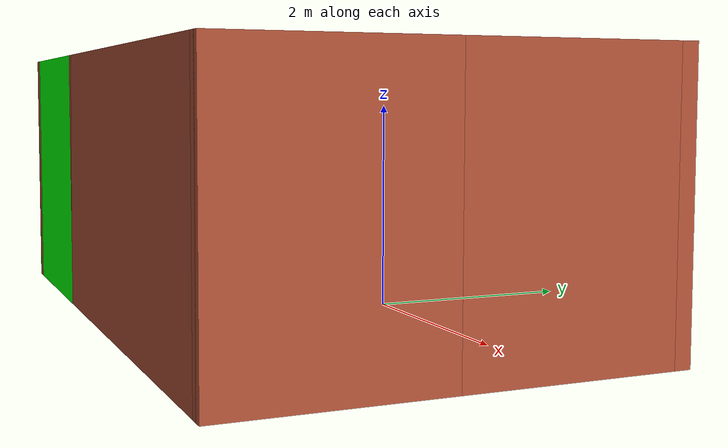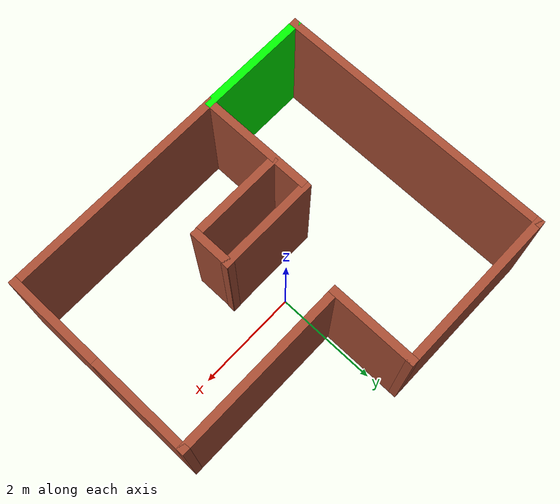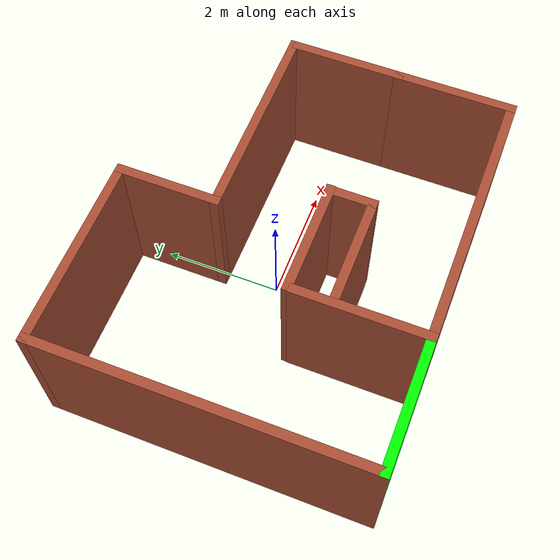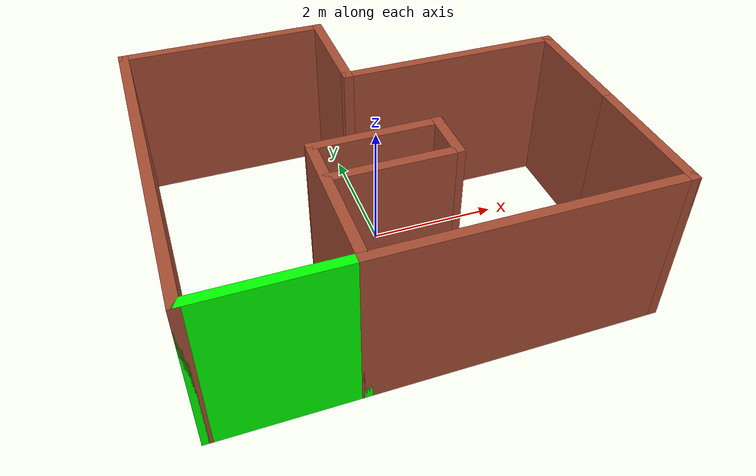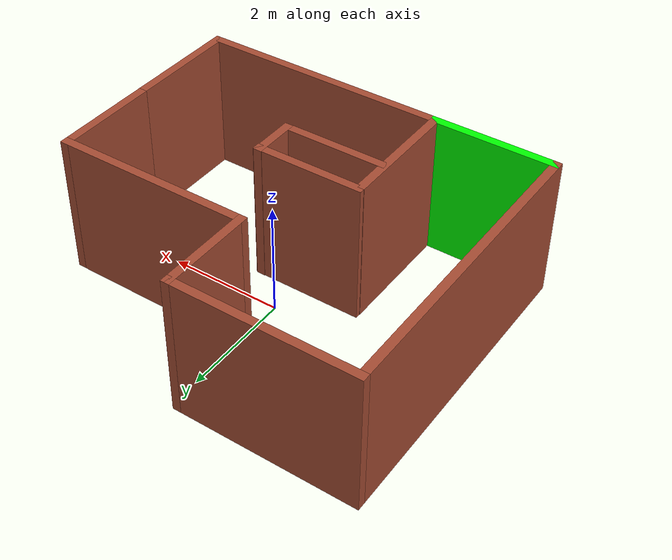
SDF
<?xml version='1.0'?>
<sdf version='1.7'>
  <model name='Enclosed'>
    <link name='Wall_0'>
      <pose>3.225 0.0025 0 0 -0 1.5708</pose>
      <self_collide>0</self_collide>
      <enable_wind>0</enable_wind>
      <kinematic>0</kinematic>
      <visual name='Wall_0_Visual'>
        <pose>0 0 1.25 0 -0 0</pose>
        <geometry>
          <box>
            <size>2 0.15 2.5</size>
          </box>
        </geometry>
        <material>
          <script>
            <uri>file://media/materials/scripts/gazebo.material</uri>
            <name>Gazebo/Bricks</name>
          </script>
          <ambient>1 1 1 1</ambient>
          <shader type='pixel'/>
        </material>
        <meta>
          <layer>0</layer>
        </meta>
        <transparency>0</transparency>
        <cast_shadows>1</cast_shadows>
      </visual>
      <collision name='Wall_0_Collision'>
        <laser_retro>0</laser_retro>
        <max_contacts>10</max_contacts>
        <pose>0 0 1.25 0 -0 0</pose>
        <geometry>
          <box>
            <size>2 0.15 2.5</size>
          </box>
        </geometry>
        <surface>
          <friction>
            <ode>
              <mu>1</mu>
              <mu2>1</mu2>
              <fdir1>0 0 0</fdir1>
              <slip1>0</slip1>
              <slip2>0</slip2>
            </ode>
            <torsional>
              <coefficient>1</coefficient>
              <patch_radius>0</patch_radius>
              <surface_radius>0</surface_radius>
              <use_patch_radius>1</use_patch_radius>
              <ode>
                <slip>0</slip>
              </ode>
            </torsional>
          </friction>
          <bounce>
            <restitution_coefficient>0</restitution_coefficient>
            <threshold>1e+06</threshold>
          </bounce>
          <contact>
            <collide_without_contact>0</collide_without_contact>
            <collide_without_contact_bitmask>1</collide_without_contact_bitmask>
            <collide_bitmask>1</collide_bitmask>
            <ode>
              <soft_cfm>0</soft_cfm>
              <soft_erp>0.2</soft_erp>
              <kp>1e+13</kp>
              <kd>1</kd>
              <max_vel>0.01</max_vel>
              <min_depth>0</min_depth>
            </ode>
            <bullet>
              <split_impulse>1</split_impulse>
              <split_impulse_penetration_threshold>-0.01</split_impulse_penetration_threshold>
              <soft_cfm>0</soft_cfm>
              <soft_erp>0.2</soft_erp>
              <kp>1e+13</kp>
              <kd>1</kd>
            </bullet>
          </contact>
        </surface>
      </collision>
    </link>
    <link name='Wall_1'>
      <pose>1.55 0.9275 0 0 -0 3.14159</pose>
      <self_collide>0</self_collide>
      <enable_wind>0</enable_wind>
      <kinematic>0</kinematic>
      <visual name='Wall_1_Visual'>
        <pose>0 0 1.25 0 -0 0</pose>
        <geometry>
          <box>
            <size>3.5 0.15 2.5</size>
          </box>
        </geometry>
        <material>
          <script>
            <uri>file://media/materials/scripts/gazebo.material</uri>
            <name>Gazebo/Bricks</name>
          </script>
          <ambient>1 1 1 1</ambient>
          <shader type='pixel'/>
        </material>
        <meta>
          <layer>0</layer>
        </meta>
        <transparency>0</transparency>
        <cast_shadows>1</cast_shadows>
      </visual>
      <collision name='Wall_1_Collision'>
        <laser_retro>0</laser_retro>
        <max_contacts>10</max_contacts>
        <pose>0 0 1.25 0 -0 0</pose>
        <geometry>
          <box>
            <size>3.5 0.15 2.5</size>
          </box>
        </geometry>
        <surface>
          <friction>
            <ode>
              <mu>1</mu>
              <mu2>1</mu2>
              <fdir1>0 0 0</fdir1>
              <slip1>0</slip1>
              <slip2>0</slip2>
            </ode>
            <torsional>
              <coefficient>1</coefficient>
              <patch_radius>0</patch_radius>
              <surface_radius>0</surface_radius>
              <use_patch_radius>1</use_patch_radius>
              <ode>
                <slip>0</slip>
              </ode>
            </torsional>
          </friction>
          <bounce>
            <restitution_coefficient>0</restitution_coefficient>
            <threshold>1e+06</threshold>
          </bounce>
          <contact>
            <collide_without_contact>0</collide_without_contact>
            <collide_without_contact_bitmask>1</collide_without_contact_bitmask>
            <collide_bitmask>1</collide_bitmask>
            <ode>
              <soft_cfm>0</soft_cfm>
              <soft_erp>0.2</soft_erp>
              <kp>1e+13</kp>
              <kd>1</kd>
              <max_vel>0.01</max_vel>
              <min_depth>0</min_depth>
            </ode>
            <bullet>
              <split_impulse>1</split_impulse>
              <split_impulse_penetration_threshold>-0.01</split_impulse_penetration_threshold>
              <soft_cfm>0</soft_cfm>
              <soft_erp>0.2</soft_erp>
              <kp>1e+13</kp>
              <kd>1</kd>
            </bullet>
          </contact>
        </surface>
      </collision>
    </link>
    <link name='Wall_10'>
      <pose>3.225 -1.8725 0 0 -0 1.5708</pose>
      <self_collide>0</self_collide>
      <enable_wind>0</enable_wind>
      <kinematic>0</kinematic>
      <visual name='Wall_10_Visual'>
        <pose>0 0 1.25 0 -0 0</pose>
        <geometry>
          <box>
            <size>2.05 0.15 2.5</size>
          </box>
        </geometry>
        <material>
          <script>
            <uri>file://media/materials/scripts/gazebo.material</uri>
            <name>Gazebo/Bricks</name>
          </script>
          <ambient>1 1 1 1</ambient>
          <shader type='pixel'/>
        </material>
        <meta>
          <layer>0</layer>
        </meta>
        <transparency>0</transparency>
        <cast_shadows>1</cast_shadows>
      </visual>
      <collision name='Wall_10_Collision'>
        <laser_retro>0</laser_retro>
        <max_contacts>10</max_contacts>
        <pose>0 0 1.25 0 -0 0</pose>
        <geometry>
          <box>
            <size>2.05 0.15 2.5</size>
          </box>
        </geometry>
        <surface>
          <friction>
            <ode>
              <mu>1</mu>
              <mu2>1</mu2>
              <fdir1>0 0 0</fdir1>
              <slip1>0</slip1>
              <slip2>0</slip2>
            </ode>
            <torsional>
              <coefficient>1</coefficient>
              <patch_radius>0</patch_radius>
              <surface_radius>0</surface_radius>
              <use_patch_radius>1</use_patch_radius>
              <ode>
                <slip>0</slip>
              </ode>
            </torsional>
          </friction>
          <bounce>
            <restitution_coefficient>0</restitution_coefficient>
            <threshold>1e+06</threshold>
          </bounce>
          <contact>
            <collide_without_contact>0</collide_without_contact>
            <collide_without_contact_bitmask>1</collide_without_contact_bitmask>
            <collide_bitmask>1</collide_bitmask>
            <ode>
              <soft_cfm>0</soft_cfm>
              <soft_erp>0.2</soft_erp>
              <kp>1e+13</kp>
              <kd>1</kd>
              <max_vel>0.01</max_vel>
              <min_depth>0</min_depth>
            </ode>
            <bullet>
              <split_impulse>1</split_impulse>
              <split_impulse_penetration_threshold>-0.01</split_impulse_penetration_threshold>
              <soft_cfm>0</soft_cfm>
              <soft_erp>0.2</soft_erp>
              <kp>1e+13</kp>
              <kd>1</kd>
            </bullet>
          </contact>
        </surface>
      </collision>
    </link>
    <link name='Wall_2'>
      <pose>-0.125 1.7275 0 0 -0 1.5708</pose>
      <self_collide>0</self_collide>
      <enable_wind>0</enable_wind>
      <kinematic>0</kinematic>
      <visual name='Wall_2_Visual'>
        <pose>0 0 1.25 0 -0 0</pose>
        <geometry>
          <box>
            <size>1.75 0.15 2.5</size>
          </box>
        </geometry>
        <material>
          <script>
            <uri>file://media/materials/scripts/gazebo.material</uri>
            <name>Gazebo/Bricks</name>
          </script>
          <ambient>1 1 1 1</ambient>
          <shader type='pixel'/>
        </material>
        <meta>
          <layer>0</layer>
        </meta>
        <transparency>0</transparency>
        <cast_shadows>1</cast_shadows>
      </visual>
      <collision name='Wall_2_Collision'>
        <laser_retro>0</laser_retro>
        <max_contacts>10</max_contacts>
        <pose>0 0 1.25 0 -0 0</pose>
        <geometry>
          <box>
            <size>1.75 0.15 2.5</size>
          </box>
        </geometry>
        <surface>
          <friction>
            <ode>
              <mu>1</mu>
              <mu2>1</mu2>
              <fdir1>0 0 0</fdir1>
              <slip1>0</slip1>
              <slip2>0</slip2>
            </ode>
            <torsional>
              <coefficient>1</coefficient>
              <patch_radius>0</patch_radius>
              <surface_radius>0</surface_radius>
              <use_patch_radius>1</use_patch_radius>
              <ode>
                <slip>0</slip>
              </ode>
            </torsional>
          </friction>
          <bounce>
            <restitution_coefficient>0</restitution_coefficient>
            <threshold>1e+06</threshold>
          </bounce>
          <contact>
            <collide_without_contact>0</collide_without_contact>
            <collide_without_contact_bitmask>1</collide_without_contact_bitmask>
            <collide_bitmask>1</collide_bitmask>
            <ode>
              <soft_cfm>0</soft_cfm>
              <soft_erp>0.2</soft_erp>
              <kp>1e+13</kp>
              <kd>1</kd>
              <max_vel>0.01</max_vel>
              <min_depth>0</min_depth>
            </ode>
            <bullet>
              <split_impulse>1</split_impulse>
              <split_impulse_penetration_threshold>-0.01</split_impulse_penetration_threshold>
              <soft_cfm>0</soft_cfm>
              <soft_erp>0.2</soft_erp>
              <kp>1e+13</kp>
              <kd>1</kd>
            </bullet>
          </contact>
        </surface>
      </collision>
    </link>
    <link name='Wall_3'>
      <pose>-1.675 2.5275 0 0 -0 3.14159</pose>
      <self_collide>0</self_collide>
      <enable_wind>0</enable_wind>
      <kinematic>0</kinematic>
      <visual name='Wall_3_Visual'>
        <pose>0 0 1.25 0 -0 0</pose>
        <geometry>
          <box>
            <size>3.25 0.15 2.5</size>
          </box>
        </geometry>
        <material>
          <script>
            <uri>file://media/materials/scripts/gazebo.material</uri>
            <name>Gazebo/Bricks</name>
          </script>
          <ambient>1 1 1 1</ambient>
          <shader type='pixel'/>
        </material>
        <meta>
          <layer>0</layer>
        </meta>
        <transparency>0</transparency>
        <cast_shadows>1</cast_shadows>
      </visual>
      <collision name='Wall_3_Collision'>
        <laser_retro>0</laser_retro>
        <max_contacts>10</max_contacts>
        <pose>0 0 1.25 0 -0 0</pose>
        <geometry>
          <box>
            <size>3.25 0.15 2.5</size>
          </box>
        </geometry>
        <surface>
          <friction>
            <ode>
              <mu>1</mu>
              <mu2>1</mu2>
              <fdir1>0 0 0</fdir1>
              <slip1>0</slip1>
              <slip2>0</slip2>
            </ode>
            <torsional>
              <coefficient>1</coefficient>
              <patch_radius>0</patch_radius>
              <surface_radius>0</surface_radius>
              <use_patch_radius>1</use_patch_radius>
              <ode>
                <slip>0</slip>
              </ode>
            </torsional>
          </friction>
          <bounce>
            <restitution_coefficient>0</restitution_coefficient>
            <threshold>1e+06</threshold>
          </bounce>
          <contact>
            <collide_without_contact>0</collide_without_contact>
            <collide_without_contact_bitmask>1</collide_without_contact_bitmask>
            <collide_bitmask>1</collide_bitmask>
            <ode>
              <soft_cfm>0</soft_cfm>
              <soft_erp>0.2</soft_erp>
              <kp>1e+13</kp>
              <kd>1</kd>
              <max_vel>0.01</max_vel>
              <min_depth>0</min_depth>
            </ode>
            <bullet>
              <split_impulse>1</split_impulse>
              <split_impulse_penetration_threshold>-0.01</split_impulse_penetration_threshold>
              <soft_cfm>0</soft_cfm>
              <soft_erp>0.2</soft_erp>
              <kp>1e+13</kp>
              <kd>1</kd>
            </bullet>
          </contact>
        </surface>
      </collision>
    </link>
    <link name='Wall_4'>
      <pose>-3.225 -0.1475 0 0 0 -1.5708</pose>
      <self_collide>0</self_collide>
      <enable_wind>0</enable_wind>
      <kinematic>0</kinematic>
      <visual name='Wall_4_Visual'>
        <pose>0 0 1.25 0 -0 0</pose>
        <geometry>
          <box>
            <size>5.5 0.15 2.5</size>
          </box>
        </geometry>
        <material>
          <script>
            <uri>file://media/materials/scripts/gazebo.material</uri>
            <name>Gazebo/Bricks</name>
          </script>
          <ambient>1 1 1 1</ambient>
          <shader type='pixel'/>
        </material>
        <meta>
          <layer>0</layer>
        </meta>
        <transparency>0</transparency>
        <cast_shadows>1</cast_shadows>
      </visual>
      <collision name='Wall_4_Collision'>
        <laser_retro>0</laser_retro>
        <max_contacts>10</max_contacts>
        <pose>0 0 1.25 0 -0 0</pose>
        <geometry>
          <box>
            <size>5.5 0.15 2.5</size>
          </box>
        </geometry>
        <surface>
          <friction>
            <ode>
              <mu>1</mu>
              <mu2>1</mu2>
              <fdir1>0 0 0</fdir1>
              <slip1>0</slip1>
              <slip2>0</slip2>
            </ode>
            <torsional>
              <coefficient>1</coefficient>
              <patch_radius>0</patch_radius>
              <surface_radius>0</surface_radius>
              <use_patch_radius>1</use_patch_radius>
              <ode>
                <slip>0</slip>
              </ode>
            </torsional>
          </friction>
          <bounce>
            <restitution_coefficient>0</restitution_coefficient>
            <threshold>1e+06</threshold>
          </bounce>
          <contact>
            <collide_without_contact>0</collide_without_contact>
            <collide_without_contact_bitmask>1</collide_without_contact_bitmask>
            <collide_bitmask>1</collide_bitmask>
            <ode>
              <soft_cfm>0</soft_cfm>
              <soft_erp>0.2</soft_erp>
              <kp>1e+13</kp>
              <kd>1</kd>
              <max_vel>0.01</max_vel>
              <min_depth>0</min_depth>
            </ode>
            <bullet>
              <split_impulse>1</split_impulse>
              <split_impulse_penetration_threshold>-0.01</split_impulse_penetration_threshold>
              <soft_cfm>0</soft_cfm>
              <soft_erp>0.2</soft_erp>
              <kp>1e+13</kp>
              <kd>1</kd>
            </bullet>
          </contact>
        </surface>
      </collision>
    </link>
    <link name='Wall_5'>
      <pose>-2.175 -2.8225 0 0 -0 0</pose>
      <self_collide>0</self_collide>
      <enable_wind>0</enable_wind>
      <kinematic>0</kinematic>
      <visual name='Wall_5_Visual'>
        <pose>0 0 1.25 0 -0 0</pose>
        <geometry>
          <box>
            <size>2.25 0.15 2.5</size>
          </box>
        </geometry>
        <material>
          <ambient>0 1 0 1</ambient>
          <diffuse>0 1 0 1</diffuse>
          <shader type='pixel'/>
          <script>
            <name>ModelPreview_3::Wall_5::Wall_5_Visual_MATERIAL_</name>
            <uri>__default__</uri>
          </script>
        </material>
        <meta>
          <layer>0</layer>
        </meta>
        <transparency>0</transparency>
        <cast_shadows>1</cast_shadows>
      </visual>
      <collision name='Wall_5_Collision'>
        <laser_retro>0</laser_retro>
        <max_contacts>10</max_contacts>
        <pose>0 0 1.25 0 -0 0</pose>
        <geometry>
          <box>
            <size>2.25 0.15 2.5</size>
          </box>
        </geometry>
        <surface>
          <friction>
            <ode>
              <mu>1</mu>
              <mu2>1</mu2>
              <fdir1>0 0 0</fdir1>
              <slip1>0</slip1>
              <slip2>0</slip2>
            </ode>
            <torsional>
              <coefficient>1</coefficient>
              <patch_radius>0</patch_radius>
              <surface_radius>0</surface_radius>
              <use_patch_radius>1</use_patch_radius>
              <ode>
                <slip>0</slip>
              </ode>
            </torsional>
          </friction>
          <bounce>
            <restitution_coefficient>0</restitution_coefficient>
            <threshold>1e+06</threshold>
          </bounce>
          <contact>
            <collide_without_contact>0</collide_without_contact>
            <collide_without_contact_bitmask>1</collide_without_contact_bitmask>
            <collide_bitmask>1</collide_bitmask>
            <ode>
              <soft_cfm>0</soft_cfm>
              <soft_erp>0.2</soft_erp>
              <kp>1e+13</kp>
              <kd>1</kd>
              <max_vel>0.01</max_vel>
              <min_depth>0</min_depth>
            </ode>
            <bullet>
              <split_impulse>1</split_impulse>
              <split_impulse_penetration_threshold>-0.01</split_impulse_penetration_threshold>
              <soft_cfm>0</soft_cfm>
              <soft_erp>0.2</soft_erp>
              <kp>1e+13</kp>
              <kd>1</kd>
            </bullet>
          </contact>
        </surface>
      </collision>
    </link>
    <link name='Wall_6'>
      <pose>-1.125 -1.7725 0 0 -0 1.5708</pose>
      <self_collide>0</self_collide>
      <enable_wind>0</enable_wind>
      <kinematic>0</kinematic>
      <visual name='Wall_6_Visual'>
        <pose>0 0 1.25 0 -0 0</pose>
        <geometry>
          <box>
            <size>2.25 0.15 2.5</size>
          </box>
        </geometry>
        <material>
          <script>
            <uri>file://media/materials/scripts/gazebo.material</uri>
            <name>Gazebo/Bricks</name>
          </script>
          <ambient>1 1 1 1</ambient>
          <shader type='pixel'/>
        </material>
        <meta>
          <layer>0</layer>
        </meta>
        <transparency>0</transparency>
        <cast_shadows>1</cast_shadows>
      </visual>
      <collision name='Wall_6_Collision'>
        <laser_retro>0</laser_retro>
        <max_contacts>10</max_contacts>
        <pose>0 0 1.25 0 -0 0</pose>
        <geometry>
          <box>
            <size>2.25 0.15 2.5</size>
          </box>
        </geometry>
        <surface>
          <friction>
            <ode>
              <mu>1</mu>
              <mu2>1</mu2>
              <fdir1>0 0 0</fdir1>
              <slip1>0</slip1>
              <slip2>0</slip2>
            </ode>
            <torsional>
              <coefficient>1</coefficient>
              <patch_radius>0</patch_radius>
              <surface_radius>0</surface_radius>
              <use_patch_radius>1</use_patch_radius>
              <ode>
                <slip>0</slip>
              </ode>
            </torsional>
          </friction>
          <bounce>
            <restitution_coefficient>0</restitution_coefficient>
            <threshold>1e+06</threshold>
          </bounce>
          <contact>
            <collide_without_contact>0</collide_without_contact>
            <collide_without_contact_bitmask>1</collide_without_contact_bitmask>
            <collide_bitmask>1</collide_bitmask>
            <ode>
              <soft_cfm>0</soft_cfm>
              <soft_erp>0.2</soft_erp>
              <kp>1e+13</kp>
              <kd>1</kd>
              <max_vel>0.01</max_vel>
              <min_depth>0</min_depth>
            </ode>
            <bullet>
              <split_impulse>1</split_impulse>
              <split_impulse_penetration_threshold>-0.01</split_impulse_penetration_threshold>
              <soft_cfm>0</soft_cfm>
              <soft_erp>0.2</soft_erp>
              <kp>1e+13</kp>
              <kd>1</kd>
            </bullet>
          </contact>
        </surface>
      </collision>
    </link>
    <link name='Wall_6_clone'>
      <pose>0.684318 -0.976283 0 0 -0 1.5708</pose>
      <self_collide>0</self_collide>
      <enable_wind>0</enable_wind>
      <kinematic>0</kinematic>
      <inertial>
        <inertia>
          <ixx>0</ixx>
          <ixy>0</ixy>
          <ixz>0</ixz>
          <iyy>0</iyy>
          <iyz>0</iyz>
          <izz>0</izz>
        </inertia>
        <mass>0</mass>
        <pose>0 0 0 0 -0 0</pose>
      </inertial>
      <visual name='Wall_6_Visual'>
        <pose>0 0 1.25 0 -0 0</pose>
        <geometry>
          <box>
            <size>0.849277 0.15 2.5</size>
          </box>
        </geometry>
        <material>
          <script>
            <uri>file://media/materials/scripts/gazebo.material</uri>
            <name>Gazebo/Bricks</name>
          </script>
          <ambient>1 1 1 1</ambient>
          <shader type='pixel'/>
        </material>
        <meta>
          <layer>0</layer>
        </meta>
        <transparency>0</transparency>
        <cast_shadows>1</cast_shadows>
      </visual>
      <collision name='Wall_6_Collision'>
        <laser_retro>0</laser_retro>
        <max_contacts>10</max_contacts>
        <pose>0 0 1.25 0 -0 0</pose>
        <geometry>
          <box>
            <size>0.849277 0.15 2.5</size>
          </box>
        </geometry>
        <surface>
          <friction>
            <ode>
              <mu>1</mu>
              <mu2>1</mu2>
              <fdir1>0 0 0</fdir1>
              <slip1>0</slip1>
              <slip2>0</slip2>
            </ode>
            <torsional>
              <coefficient>1</coefficient>
              <patch_radius>0</patch_radius>
              <surface_radius>0</surface_radius>
              <use_patch_radius>1</use_patch_radius>
              <ode>
                <slip>0</slip>
              </ode>
            </torsional>
          </friction>
          <bounce>
            <restitution_coefficient>0</restitution_coefficient>
            <threshold>1e+06</threshold>
          </bounce>
          <contact>
            <collide_without_contact>0</collide_without_contact>
            <collide_without_contact_bitmask>1</collide_without_contact_bitmask>
            <collide_bitmask>1</collide_bitmask>
            <ode>
              <soft_cfm>0</soft_cfm>
              <soft_erp>0.2</soft_erp>
              <kp>1e+13</kp>
              <kd>1</kd>
              <max_vel>0.01</max_vel>
              <min_depth>0</min_depth>
            </ode>
            <bullet>
              <split_impulse>1</split_impulse>
              <split_impulse_penetration_threshold>-0.01</split_impulse_penetration_threshold>
              <soft_cfm>0</soft_cfm>
              <soft_erp>0.2</soft_erp>
              <kp>1e+13</kp>
              <kd>1</kd>
            </bullet>
          </contact>
        </surface>
      </collision>
    </link>
    <link name='Wall_7'>
      <pose>-0.211254 -0.633279 0 0 -0 0</pose>
      <self_collide>0</self_collide>
      <enable_wind>0</enable_wind>
      <kinematic>0</kinematic>
      <inertial>
        <inertia>
          <ixx>0</ixx>
          <ixy>0</ixy>
          <ixz>0</ixz>
          <iyy>0</iyy>
          <iyz>0</iyz>
          <izz>0</izz>
        </inertia>
        <mass>0</mass>
        <pose>0 0 0 0 -0 0</pose>
      </inertial>
      <visual name='Wall_7_Visual'>
        <pose>0 0 1.25 0 -0 0</pose>
        <geometry>
          <box>
            <size>1.96323 0.15 2.5</size>
          </box>
        </geometry>
        <material>
          <script>
            <uri>file://media/materials/scripts/gazebo.material</uri>
            <name>Gazebo/Bricks</name>
          </script>
          <ambient>1 1 1 1</ambient>
          <shader type='pixel'/>
        </material>
        <meta>
          <layer>0</layer>
        </meta>
        <transparency>0</transparency>
        <cast_shadows>1</cast_shadows>
      </visual>
      <collision name='Wall_7_Collision'>
        <laser_retro>0</laser_retro>
        <max_contacts>10</max_contacts>
        <pose>0 0 1.25 0 -0 0</pose>
        <geometry>
          <box>
            <size>1.96323 0.15 2.5</size>
          </box>
        </geometry>
        <surface>
          <friction>
            <ode>
              <mu>1</mu>
              <mu2>1</mu2>
              <fdir1>0 0 0</fdir1>
              <slip1>0</slip1>
              <slip2>0</slip2>
            </ode>
            <torsional>
              <coefficient>1</coefficient>
              <patch_radius>0</patch_radius>
              <surface_radius>0</surface_radius>
              <use_patch_radius>1</use_patch_radius>
              <ode>
                <slip>0</slip>
              </ode>
            </torsional>
          </friction>
          <bounce>
            <restitution_coefficient>0</restitution_coefficient>
            <threshold>1e+06</threshold>
          </bounce>
          <contact>
            <collide_without_contact>0</collide_without_contact>
            <collide_without_contact_bitmask>1</collide_without_contact_bitmask>
            <collide_bitmask>1</collide_bitmask>
            <ode>
              <soft_cfm>0</soft_cfm>
              <soft_erp>0.2</soft_erp>
              <kp>1e+13</kp>
              <kd>1</kd>
              <max_vel>0.01</max_vel>
              <min_depth>0</min_depth>
            </ode>
            <bullet>
              <split_impulse>1</split_impulse>
              <split_impulse_penetration_threshold>-0.01</split_impulse_penetration_threshold>
              <soft_cfm>0</soft_cfm>
              <soft_erp>0.2</soft_erp>
              <kp>1e+13</kp>
              <kd>1</kd>
            </bullet>
          </contact>
        </surface>
      </collision>
    </link>
    <link name='Wall_7_clone'>
      <pose>-0.253636 -1.33239 0 0 -0 0</pose>
      <self_collide>0</self_collide>
      <enable_wind>0</enable_wind>
      <kinematic>0</kinematic>
      <inertial>
        <inertia>
          <ixx>0</ixx>
          <ixy>0</ixy>
          <ixz>0</ixz>
          <iyy>0</iyy>
          <iyz>0</iyz>
          <izz>0</izz>
        </inertia>
        <mass>0</mass>
        <pose>0 0 0 0 -0 0</pose>
      </inertial>
      <visual name='Wall_7_Visual'>
        <pose>0 0 1.25 0 -0 0</pose>
        <geometry>
          <box>
            <size>1.7888 0.15 2.5</size>
          </box>
        </geometry>
        <material>
          <script>
            <uri>file://media/materials/scripts/gazebo.material</uri>
            <name>Gazebo/Bricks</name>
          </script>
          <ambient>1 1 1 1</ambient>
          <shader type='pixel'/>
        </material>
        <meta>
          <layer>0</layer>
        </meta>
        <transparency>0</transparency>
        <cast_shadows>1</cast_shadows>
      </visual>
      <collision name='Wall_7_Collision'>
        <laser_retro>0</laser_retro>
        <max_contacts>10</max_contacts>
        <pose>0 0 1.25 0 -0 0</pose>
        <geometry>
          <box>
            <size>1.7888 0.15 2.5</size>
          </box>
        </geometry>
        <surface>
          <friction>
            <ode>
              <mu>1</mu>
              <mu2>1</mu2>
              <fdir1>0 0 0</fdir1>
              <slip1>0</slip1>
              <slip2>0</slip2>
            </ode>
            <torsional>
              <coefficient>1</coefficient>
              <patch_radius>0</patch_radius>
              <surface_radius>0</surface_radius>
              <use_patch_radius>1</use_patch_radius>
              <ode>
                <slip>0</slip>
              </ode>
            </torsional>
          </friction>
          <bounce>
            <restitution_coefficient>0</restitution_coefficient>
            <threshold>1e+06</threshold>
          </bounce>
          <contact>
            <collide_without_contact>0</collide_without_contact>
            <collide_without_contact_bitmask>1</collide_without_contact_bitmask>
            <collide_bitmask>1</collide_bitmask>
            <ode>
              <soft_cfm>0</soft_cfm>
              <soft_erp>0.2</soft_erp>
              <kp>1e+13</kp>
              <kd>1</kd>
              <max_vel>0.01</max_vel>
              <min_depth>0</min_depth>
            </ode>
            <bullet>
              <split_impulse>1</split_impulse>
              <split_impulse_penetration_threshold>-0.01</split_impulse_penetration_threshold>
              <soft_cfm>0</soft_cfm>
              <soft_erp>0.2</soft_erp>
              <kp>1e+13</kp>
              <kd>1</kd>
            </bullet>
          </contact>
        </surface>
      </collision>
    </link>
    <link name='Wall_9'>
      <pose>1.05 -2.8225 0 0 -0 0</pose>
      <self_collide>0</self_collide>
      <enable_wind>0</enable_wind>
      <kinematic>0</kinematic>
      <visual name='Wall_9_Visual'>
        <pose>0 0 1.25 0 -0 0</pose>
        <geometry>
          <box>
            <size>4.5 0.15 2.5</size>
          </box>
        </geometry>
        <material>
          <script>
            <uri>file://media/materials/scripts/gazebo.material</uri>
            <name>Gazebo/Bricks</name>
          </script>
          <ambient>1 1 1 1</ambient>
          <shader type='pixel'/>
        </material>
        <meta>
          <layer>0</layer>
        </meta>
        <transparency>0</transparency>
        <cast_shadows>1</cast_shadows>
      </visual>
      <collision name='Wall_9_Collision'>
        <laser_retro>0</laser_retro>
        <max_contacts>10</max_contacts>
        <pose>0 0 1.25 0 -0 0</pose>
        <geometry>
          <box>
            <size>4.5 0.15 2.5</size>
          </box>
        </geometry>
        <surface>
          <friction>
            <ode>
              <mu>1</mu>
              <mu2>1</mu2>
              <fdir1>0 0 0</fdir1>
              <slip1>0</slip1>
              <slip2>0</slip2>
            </ode>
            <torsional>
              <coefficient>1</coefficient>
              <patch_radius>0</patch_radius>
              <surface_radius>0</surface_radius>
              <use_patch_radius>1</use_patch_radius>
              <ode>
                <slip>0</slip>
              </ode>
            </torsional>
          </friction>
          <bounce>
            <restitution_coefficient>0</restitution_coefficient>
            <threshold>1e+06</threshold>
          </bounce>
          <contact>
            <collide_without_contact>0</collide_without_contact>
            <collide_without_contact_bitmask>1</collide_without_contact_bitmask>
            <collide_bitmask>1</collide_bitmask>
            <ode>
              <soft_cfm>0</soft_cfm>
              <soft_erp>0.2</soft_erp>
              <kp>1e+13</kp>
              <kd>1</kd>
              <max_vel>0.01</max_vel>
              <min_depth>0</min_depth>
            </ode>
            <bullet>
              <split_impulse>1</split_impulse>
              <split_impulse_penetration_threshold>-0.01</split_impulse_penetration_threshold>
              <soft_cfm>0</soft_cfm>
              <soft_erp>0.2</soft_erp>
              <kp>1e+13</kp>
              <kd>1</kd>
            </bullet>
          </contact>
        </surface>
      </collision>
    </link>
    <static>1</static>
    <allow_auto_disable>1</allow_auto_disable>
  </model>
</sdf>
